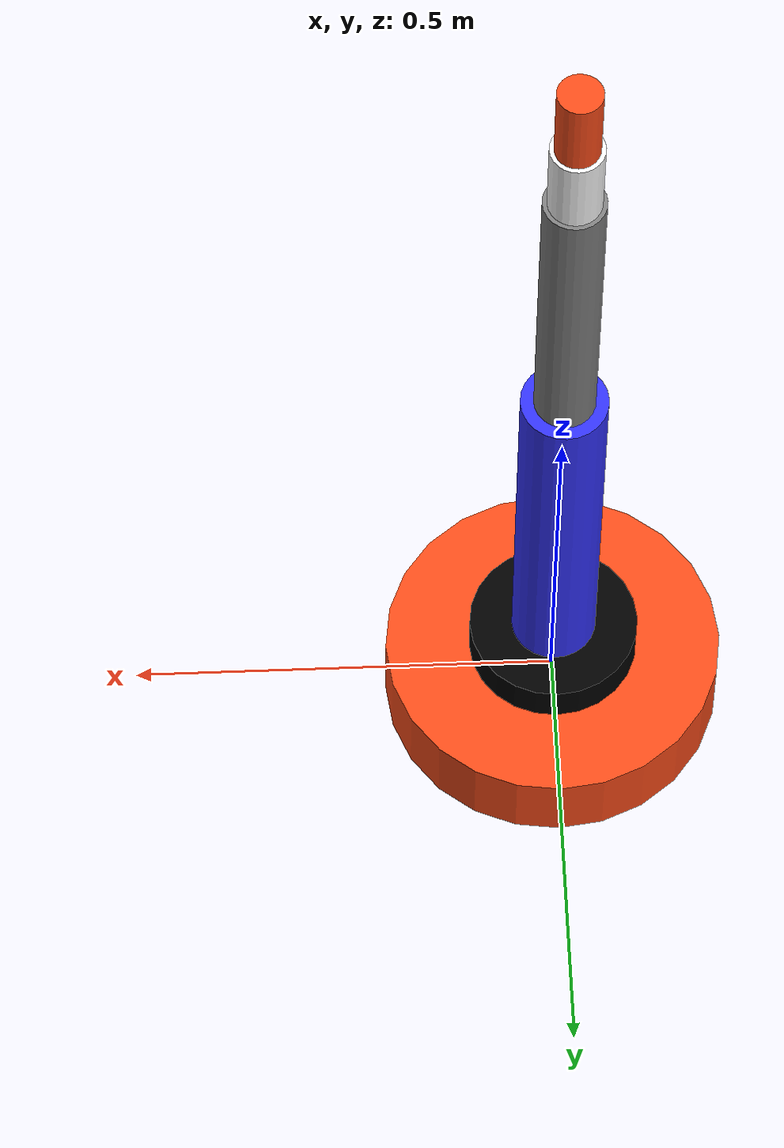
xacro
<?xml version="1.0"?>
<robot xmlns:xacro="http://www.ros.org/wiki/xacro"  name="robot">

    <xacro:include filename="robot_core.xacro" />

    <xacro:include filename="gazebo_control.xacro" />

    <!-- ROS Control Plugin -->
    <gazebo>
        <plugin name="gazebo_ros_control" filename="libgazebo_ros_control.so">
        <robotNamespace>/</robotNamespace>
        </plugin>
    </gazebo>

</robot>

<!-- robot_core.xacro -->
<robot xmlns:xacro="http://www.ros.org/wiki/xacro">

    <xacro:include filename="inertial_macros.xacro"/>

  <!-- Materials -->
    <material name="gray">
        <color rgba="0.5 0.5 0.5 1"/>
    </material>
    <material name="blue">
        <color rgba="0.2 0.2 1 1"/>
    </material>
    <material name="white">
        <color rgba="1 1 1 1" />
    </material>
    <material name="orange">
        <color rgba="1 0.3 0.1 1"/>
    </material>
    <material name="black">
        <color rgba="0 0 0 1"/>
    </material>

  <!-- BASE LINK -->
    <link name="base_link">
      <visual>
        <geometry>
          <cylinder length="0.1" radius="0.2"/> <!-- Adjust dimensions as needed -->
        </geometry>
        <material name="orange"/>
      </visual>
      <collision>
        <geometry>
          <cylinder length="0.1" radius="0.2"/>
        </geometry>
      </collision>
      <inertial>
        <mass value="1.0"/>
        <inertia ixx="0.01" ixy="0" ixz="0" iyy="0.01" iyz="0" izz="0.01"/>
      </inertial>
    </link>

  <!-- BASE ROTATION JOINT (360 degrees) -->
  <joint name="joint_base" type="continuous">
    <parent link="base_link"/>
    <child link="link_1"/>
    <origin xyz="0 0 0" rpy="0 0 0"/>
    <axis xyz="0 0 1"/>
  </joint>

  <link name="link_1">
    <visual>
      <origin xyz="0 0 0"/>
      <geometry>
        <cylinder length="0.2" radius="0.1"/>
      </geometry>
      <material name="black"/>
    </visual>
    <collision>
      <origin xyz="0 0 0"/>
      <geometry>
        <cylinder length="0.11" radius="0.11"/>
      </geometry>
    </collision>
    <xacro:inertial_cylinder mass="1.0" length="0.1" radius="0.1">
        <origin xyz="0 0 0" rpy="0 0 0"/>
    </xacro:inertial_cylinder>
  </link>

  <gazebo reference="link_1">
    <material>Gazebo/black</material>
  </gazebo>

  <!-- ARM 1 (500mm) -->
  <joint name="shoulder" type="revolute">
    <parent link="link_1"/>
    <child link="upper_arm"/>
    <origin xyz="0 0 0.1" rpy="0 0 0"/>
    <axis xyz="0 1 0"/>
    <limit lower="-1.57" upper="1.57" effort="10" velocity="1.0"/>
  </joint>

  <link name="upper_arm">
    <visual>
      <origin xyz="0 0 0.25"/>
      <geometry>
        <cylinder length="0.5" radius="0.05"/>
      </geometry>
      <material name="blue"/>
    </visual>
    <collision>
      <origin xyz="0 0 0.25"/>
      <geometry>
        <cylinder length="0.5" radius="0.05"/>
      </geometry>
    </collision>
    <xacro:inertial_cylinder mass="0.8" length="0.5" radius="0.04">
        <origin xyz="0 0 0.25" rpy="0 0 0"/>
    </xacro:inertial_cylinder>
  </link>

  <gazebo reference="upper_arm">
    <material>Gazebo/blue</material>
  </gazebo>

  <!-- ARM 2 (400mm) -->
  <joint name="elbow" type="revolute">
    <parent link="upper_arm"/>
    <child link="fore_arm"/>
    <origin xyz="0 0 0.5" rpy="0 0 0"/>
    <axis xyz="0 1 0"/>
    <limit lower="-1.57" upper="1.57" effort="10" velocity="1.0"/>
  </joint>

  <link name="fore_arm">
    <visual>
      <origin xyz="0 0 0.2"/>
      <geometry>
        <cylinder length="0.4" radius="0.035"/>
      </geometry>
      <material name="gray"/>
    </visual>
    <collision>
      <origin xyz="0 0 0.2"/>
      <geometry>
        <cylinder length="0.4" radius="0.035"/>
      </geometry>
    </collision>
    <xacro:inertial_cylinder  mass="0.6" length="0.4" radius="0.035">
        <origin xyz="0 0 0.2" rpy="0 0 0"/>
    </xacro:inertial_cylinder>
  </link>

  <gazebo reference="fore_arm">
    <material>Gazebo/gray</material>
  </gazebo>

  <!-- ARM 3 (100mm) -->
  <joint name="wrist" type="revolute">
    <parent link="fore_arm"/>
    <child link="hand"/>
    <origin xyz="0 0 0.4" rpy="0 0 0"/>
    <axis xyz="0 1 0"/>
    <limit lower="-1.57" upper="1.57" effort="10" velocity="1.0"/>
  </joint>

  <link name="hand">
    <visual>
      <origin xyz="0 0 0.05"/>
      <geometry>
        <cylinder length="0.1" radius="0.03"/>
      </geometry>
      <material name="white"/>
    </visual>
    <collision>
      <origin xyz="0 0 0.05"/>
      <geometry>
        <cylinder length="0.1" radius="0.03"/>
      </geometry>
    </collision>
    <xacro:inertial_cylinder mass="0.3" length="0.1" radius="0.03">
        <origin xyz="0 0 0.05" rpy="0 0 0"/>
    </xacro:inertial_cylinder>
  </link>

  <gazebo reference="hand">
    <material>Gazebo/white</material>
  </gazebo>

  <!-- END EFFECTOR (360-degree rotation) -->
  <joint name="joint_end_effector" type="continuous">
    <parent link="hand"/>
    <child link="fingers"/>
    <origin xyz="0 0 0.1" rpy="0 0 0"/>
    <axis xyz="0 0 1"/>
  </joint>

  <link name="fingers">
    <visual>
      <origin xyz="0 0 0.05"/>
      <geometry>
        <cylinder length="0.1" radius="0.025"/>
      </geometry>
      <material name="orange"/>
    </visual>
    <collision>
      <origin xyz="0 0 0.05"/>
      <geometry>
        <cylinder length="0.1" radius="0.025"/>
      </geometry>
    </collision>
    <xacro:inertial_cylinder mass="0.2" length="0.1" radius="0.025">
        <origin xyz="0 0 0.05" rpy="0 0 0"/>
    </xacro:inertial_cylinder>
  </link>

  <gazebo reference="fingers">
    <material>Gazebo/orange</material>
  </gazebo>

</robot>
